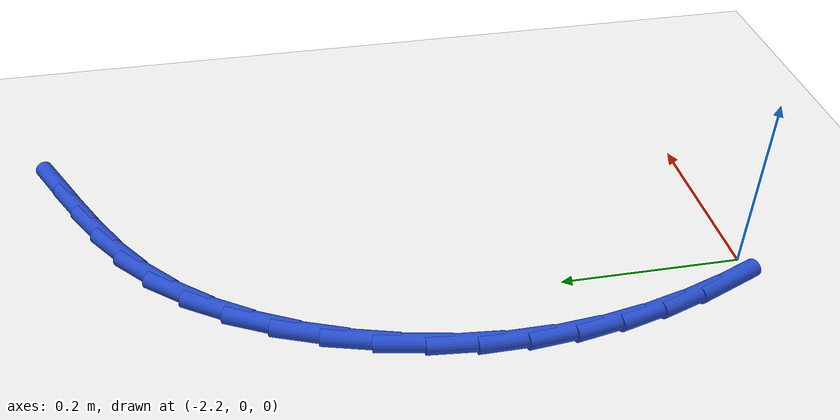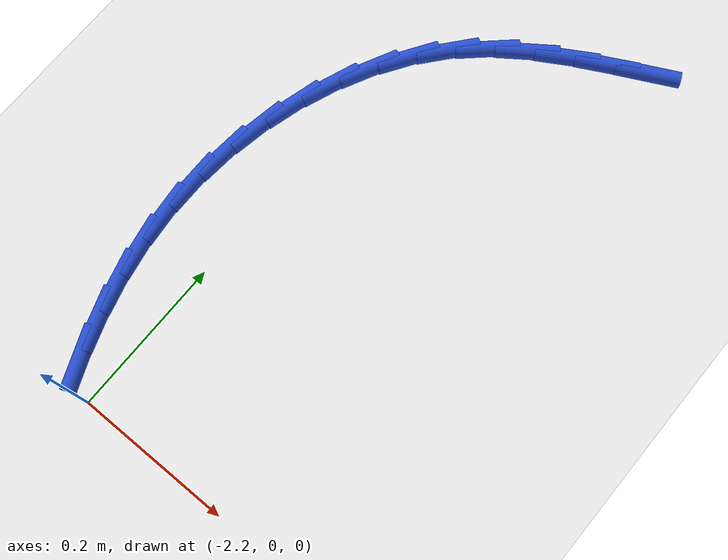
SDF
<sdf version="1.6">
 <world name="default">
  <model name="ground_plane">
   <static>1</static>
   <link name="link">
    <collision name="collision">
     <geometry><plane><normal>0 0 1</normal><size>100 100</size></plane></geometry>
     <surface><friction><ode><mu>100</mu><mu2>50</mu2></ode></friction></surface>
    </collision>
    <visual name="visual">
     <cast_shadows>0</cast_shadows>
     <geometry><plane><normal>0 0 1</normal><size>100 100</size></plane></geometry>
     <material>
      <script><uri>file://media/materials/scripts/gazebo.material</uri><name>Gazebo/WhiteGlow</name></script>
     </material>
    </visual>
   </link>
  </model>
  <model name="line">
   <link name="link_54">
    <pose>-1.9463169920493928 0.731609747390791 0.01 0 1.57 0.46329614184088624</pose>
    <collision name="collision">
     <geometry><cylinder><radius>0.01</radius><length>0.08</length></cylinder></geometry>
    </collision>
    <visual name="visual">
     <material>
      <script><name>Gazebo/Blue</name><uri>file://media/materials/scripts/gazebo.material</uri></script>
     </material>
     <geometry><cylinder><radius>0.01</radius><length>0.08</length></cylinder></geometry>
    </visual>
   </link>
   <link name="link_55">
    <pose>-1.9914400178842462 0.7090680550682078 0.01 0 1.57 0.4830757617602121</pose>
    <collision name="collision">
     <geometry><cylinder><radius>0.01</radius><length>0.08</length></cylinder></geometry>
    </collision>
    <visual name="visual">
     <material>
      <script><name>Gazebo/Blue</name><uri>file://media/materials/scripts/gazebo.material</uri></script>
     </material>
     <geometry><cylinder><radius>0.01</radius><length>0.08</length></cylinder></geometry>
    </visual>
   </link>
   <link name="link_56">
    <pose>-2.035622721003991 0.6858930551377941 0.01 0 1.57 0.5356607207719337</pose>
    <collision name="collision">
     <geometry><cylinder><radius>0.01</radius><length>0.08</length></cylinder></geometry>
    </collision>
    <visual name="visual">
     <material>
      <script><name>Gazebo/Blue</name><uri>file://media/materials/scripts/gazebo.material</uri></script>
     </material>
     <geometry><cylinder><radius>0.01</radius><length>0.08</length></cylinder></geometry>
    </visual>
   </link>
   <link name="link_57">
    <pose>-2.0779641815126886 0.6607614320810288 0.01 0 1.57 0.6223590494526726</pose>
    <collision name="collision">
     <geometry><cylinder><radius>0.01</radius><length>0.08</length></cylinder></geometry>
    </collision>
    <visual name="visual">
     <material>
      <script><name>Gazebo/Blue</name><uri>file://media/materials/scripts/gazebo.material</uri></script>
     </material>
     <geometry><cylinder><radius>0.01</radius><length>0.08</length></cylinder></geometry>
    </visual>
   </link>
   <link name="link_58">
    <pose>-2.1175634795143994 0.6323498703793914 0.01 0 1.57 0.7424584884439164</pose>
    <collision name="collision">
     <geometry><cylinder><radius>0.01</radius><length>0.08</length></cylinder></geometry>
    </collision>
    <visual name="visual">
     <material>
      <script><name>Gazebo/Blue</name><uri>file://media/materials/scripts/gazebo.material</uri></script>
     </material>
     <geometry><cylinder><radius>0.01</radius><length>0.08</length></cylinder></geometry>
    </visual>
   </link>
   <link name="link_59">
    <pose>-2.1535255914380613 0.5993507525416252 0.01 0 1.57 0.8756506572910439</pose>
    <collision name="collision">
     <geometry><cylinder><radius>0.01</radius><length>0.08</length></cylinder></geometry>
    </collision>
    <visual name="visual">
     <material>
      <script><name>Gazebo/Blue</name><uri>file://media/materials/scripts/gazebo.material</uri></script>
     </material>
     <geometry><cylinder><radius>0.01</radius><length>0.08</length></cylinder></geometry>
    </visual>
   </link>
   <link name="link_60">
    <pose>-2.1852687615727504 0.561290486933776 0.01 0 1.57 0.9965549942717626</pose>
    <collision name="collision">
     <geometry><cylinder><radius>0.01</radius><length>0.08</length></cylinder></geometry>
    </collision>
    <visual name="visual">
     <material>
      <script><name>Gazebo/Blue</name><uri>file://media/materials/scripts/gazebo.material</uri></script>
     </material>
     <geometry><cylinder><radius>0.01</radius><length>0.08</length></cylinder></geometry>
    </visual>
   </link>
   <link name="link_61">
    <pose>-2.2126748358751938 0.5189297476334631 0.01 0 1.57 1.1056165719106248</pose>
    <collision name="collision">
     <geometry><cylinder><radius>0.01</radius><length>0.08</length></cylinder></geometry>
    </collision>
    <visual name="visual">
     <material>
      <script><name>Gazebo/Blue</name><uri>file://media/materials/scripts/gazebo.material</uri></script>
     </material>
     <geometry><cylinder><radius>0.01</radius><length>0.08</length></cylinder></geometry>
    </visual>
   </link>
   <link name="link_62">
    <pose>-2.235663079040139 0.47312883015742646 0.01 0 1.57 1.205754740752293</pose>
    <collision name="collision">
     <geometry><cylinder><radius>0.01</radius><length>0.08</length></cylinder></geometry>
    </collision>
    <visual name="visual">
     <material>
      <script><name>Gazebo/Blue</name><uri>file://media/materials/scripts/gazebo.material</uri></script>
     </material>
     <geometry><cylinder><radius>0.01</radius><length>0.08</length></cylinder></geometry>
    </visual>
   </link>
   <link name="link_63">
    <pose>-2.2541527557623344 0.42474803002240513 0.01 0 1.57 1.29996805966682</pose>
    <collision name="collision">
     <geometry><cylinder><radius>0.01</radius><length>0.08</length></cylinder></geometry>
    </collision>
    <visual name="visual">
     <material>
      <script><name>Gazebo/Blue</name><uri>file://media/materials/scripts/gazebo.material</uri></script>
     </material>
     <geometry><cylinder><radius>0.01</radius><length>0.08</length></cylinder></geometry>
    </visual>
   </link>
   <link name="link_64">
    <pose>-2.268063130736526 0.37464764274513906 0.01 0 1.57 1.3912288793765015</pose>
    <collision name="collision">
     <geometry><cylinder><radius>0.01</radius><length>0.08</length></cylinder></geometry>
    </collision>
    <visual name="visual">
     <material>
      <script><name>Gazebo/Blue</name><uri>file://media/materials/scripts/gazebo.material</uri></script>
     </material>
     <geometry><cylinder><radius>0.01</radius><length>0.08</length></cylinder></geometry>
    </visual>
   </link>
   <link name="link_65">
    <pose>-2.2773134686574643 0.3236879638423676 0.01 0 1.57 1.4825316953811323</pose>
    <collision name="collision">
     <geometry><cylinder><radius>0.01</radius><length>0.08</length></cylinder></geometry>
    </collision>
    <visual name="visual">
     <material>
      <script><name>Gazebo/Blue</name><uri>file://media/materials/scripts/gazebo.material</uri></script>
     </material>
     <geometry><cylinder><radius>0.01</radius><length>0.08</length></cylinder></geometry>
    </visual>
   </link>
   <link name="link_66">
    <pose>-2.281823034219897 0.27272928883082986 0.01 0 1.57 -1.5650537961055717</pose>
    <collision name="collision">
     <geometry><cylinder><radius>0.01</radius><length>0.08</length></cylinder></geometry>
    </collision>
    <visual name="visual">
     <material>
      <script><name>Gazebo/Blue</name><uri>file://media/materials/scripts/gazebo.material</uri></script>
     </material>
     <geometry><cylinder><radius>0.01</radius><length>0.08</length></cylinder></geometry>
    </visual>
   </link>
   <link name="link_67">
    <pose>-2.2815350876772875 0.22258704440782182 0.01 0 1.57 -1.4723032508969647</pose>
    <collision name="collision">
     <geometry><cylinder><radius>0.01</radius><length>0.08</length></cylinder></geometry>
    </collision>
    <visual name="visual">
     <material>
      <script><name>Gazebo/Blue</name><uri>file://media/materials/scripts/gazebo.material</uri></script>
     </material>
     <geometry><cylinder><radius>0.01</radius><length>0.08</length></cylinder></geometry>
    </visual>
   </link>
   <link name="link_68">
    <pose>-2.276687251434488 0.17352623532062134 0.01 0 1.57 -1.38631401132237</pose>
    <collision name="collision">
     <geometry><cylinder><radius>0.01</radius><length>0.08</length></cylinder></geometry>
    </collision>
    <visual name="visual">
     <material>
      <script><name>Gazebo/Blue</name><uri>file://media/materials/scripts/gazebo.material</uri></script>
     </material>
     <geometry><cylinder><radius>0.01</radius><length>0.08</length></cylinder></geometry>
    </visual>
   </link>
   <link name="link_69">
    <pose>-2.2677146438621065 0.12544257252624227 0.01 0 1.57 -1.3088648517512105</pose>
    <collision name="collision">
     <geometry><cylinder><radius>0.01</radius><length>0.08</length></cylinder></geometry>
    </collision>
    <visual name="visual">
     <material>
      <script><name>Gazebo/Blue</name><uri>file://media/materials/scripts/gazebo.material</uri></script>
     </material>
     <geometry><cylinder><radius>0.01</radius><length>0.08</length></cylinder></geometry>
    </visual>
   </link>
   <link name="link_70">
    <pose>-2.2550560331128415 0.07822494232654527 0.01 0 1.57 -1.2409656220218708</pose>
    <collision name="collision">
     <geometry><cylinder><radius>0.01</radius><length>0.08</length></cylinder></geometry>
    </collision>
    <visual name="visual">
     <material>
      <script><name>Gazebo/Blue</name><uri>file://media/materials/scripts/gazebo.material</uri></script>
     </material>
     <geometry><cylinder><radius>0.01</radius><length>0.08</length></cylinder></geometry>
    </visual>
   </link>
   <link name="link_71">
    <pose>-2.2391501873393866 0.03176223102339205 0.01 0 1.57 -1.1830346060396248</pose>
    <collision name="collision">
     <geometry><cylinder><radius>0.01</radius><length>0.08</length></cylinder></geometry>
    </collision>
    <visual name="visual">
     <material>
      <script><name>Gazebo/Blue</name><uri>file://media/materials/scripts/gazebo.material</uri></script>
     </material>
     <geometry><cylinder><radius>0.01</radius><length>0.08</length></cylinder></geometry>
    </visual>
   </link>
  </model>
 </world>
</sdf>
